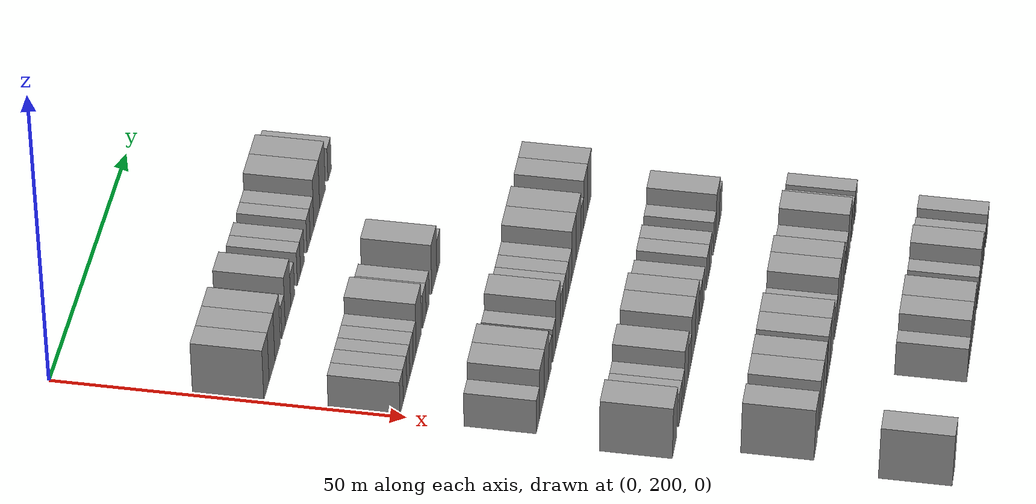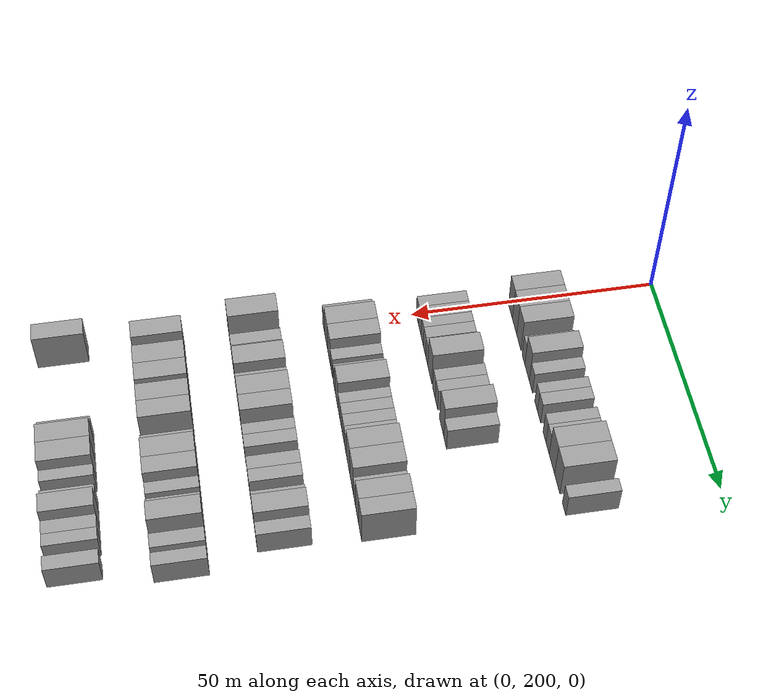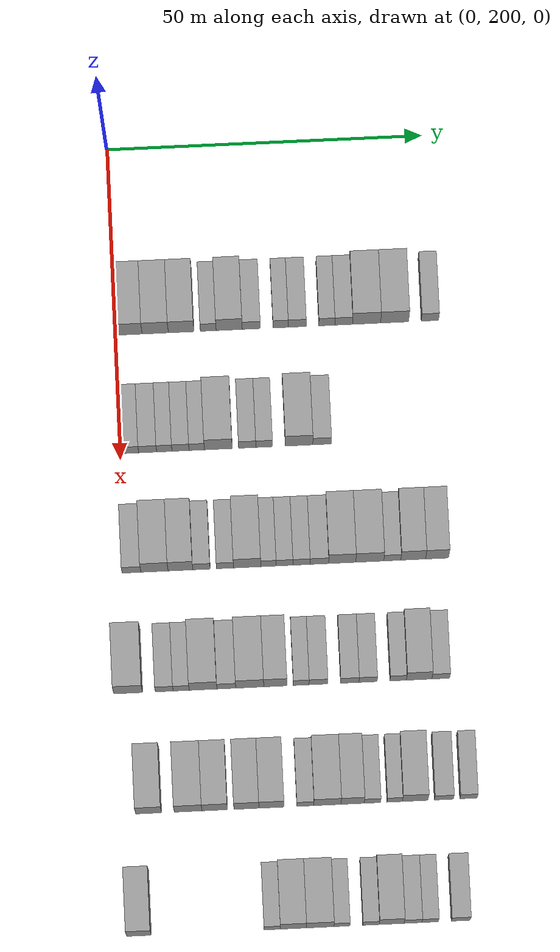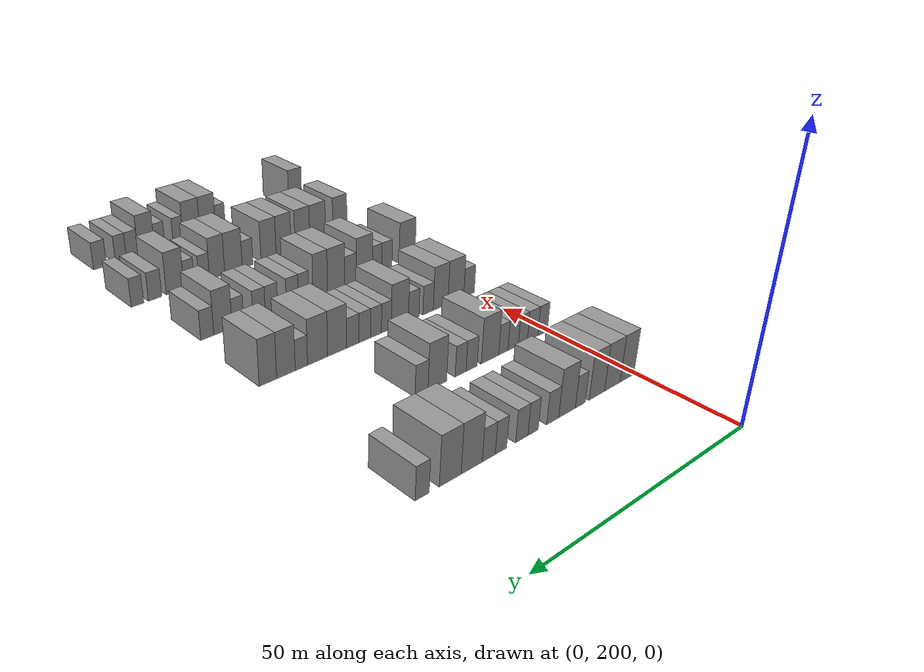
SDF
<sdf version="1.6">
 <world name="default">
  <model name="building_142">
   <static>1</static>
   <pose>25.0000 202.3733 0 0.000000 0.000000 0.000000</pose>
   <link name="link">
    <pose>0 0 4.50 0 0 0</pose>
    <collision name="collision"><geometry><box><size>10.0000 3.8001 9.0000</size></box></geometry></collision>
    <visual name="visual">
     <cast_shadows>0</cast_shadows>
     <geometry><box><size>10.0000 3.8001 9.0000</size></box></geometry>
     <material>
      <script>
       <uri>model://grey_wall/materials/scripts</uri>
       <uri>model://grey_wall/materials/textures</uri>
       <name>vrc/grey_wall</name>
      </script>
     </material>
    </visual>
   </link>
  </model>
  <model name="building_143">
   <static>1</static>
   <pose>25.0000 206.3467 0 0.000000 0.000000 0.000000</pose>
   <link name="link">
    <pose>0 0 4.50 0 0 0</pose>
    <collision name="collision"><geometry><box><size>10.0000 4.1468 9.0000</size></box></geometry></collision>
    <visual name="visual">
     <cast_shadows>0</cast_shadows>
     <geometry><box><size>10.0000 4.1468 9.0000</size></box></geometry>
     <material>
      <script>
       <uri>model://grey_wall/materials/scripts</uri>
       <uri>model://grey_wall/materials/textures</uri>
       <name>vrc/grey_wall</name>
      </script>
     </material>
    </visual>
   </link>
  </model>
  <model name="building_144">
   <static>1</static>
   <pose>25.0000 210.4505 0 0.000000 0.000000 0.000000</pose>
   <link name="link">
    <pose>0 0 4.50 0 0 0</pose>
    <collision name="collision"><geometry><box><size>10.0000 4.0608 9.0000</size></box></geometry></collision>
    <visual name="visual">
     <cast_shadows>0</cast_shadows>
     <geometry><box><size>10.0000 4.0608 9.0000</size></box></geometry>
     <material>
      <script>
       <uri>model://grey_wall/materials/scripts</uri>
       <uri>model://grey_wall/materials/textures</uri>
       <name>vrc/grey_wall</name>
      </script>
     </material>
    </visual>
   </link>
  </model>
  <model name="building_145">
   <static>1</static>
   <pose>25.0000 214.7290 0 0.000000 0.000000 0.000000</pose>
   <link name="link">
    <pose>0 0 3.00 0 0 0</pose>
    <collision name="collision"><geometry><box><size>10.0000 2.4961 6.0000</size></box></geometry></collision>
    <visual name="visual">
     <cast_shadows>0</cast_shadows>
     <geometry><box><size>10.0000 2.4961 6.0000</size></box></geometry>
     <material>
      <script>
       <uri>model://grey_wall/materials/scripts</uri>
       <uri>model://grey_wall/materials/textures</uri>
       <name>vrc/grey_wall</name>
      </script>
     </material>
    </visual>
   </link>
  </model>
  <model name="building_146">
   <static>1</static>
   <pose>25.0000 218.0418 0 0.000000 0.000000 0.000000</pose>
   <link name="link">
    <pose>0 0 4.50 0 0 0</pose>
    <collision name="collision"><geometry><box><size>10.0000 4.1295 9.0000</size></box></geometry></collision>
    <visual name="visual">
     <cast_shadows>0</cast_shadows>
     <geometry><box><size>10.0000 4.1295 9.0000</size></box></geometry>
     <material>
      <script>
       <uri>model://grey_wall/materials/scripts</uri>
       <uri>model://grey_wall/materials/textures</uri>
       <name>vrc/grey_wall</name>
      </script>
     </material>
    </visual>
   </link>
  </model>
  <model name="building_147">
   <static>1</static>
   <pose>25.0000 221.5386 0 0.000000 0.000000 0.000000</pose>
   <link name="link">
    <pose>0 0 3.00 0 0 0</pose>
    <collision name="collision"><geometry><box><size>10.0000 2.8642 6.0000</size></box></geometry></collision>
    <visual name="visual">
     <cast_shadows>0</cast_shadows>
     <geometry><box><size>10.0000 2.8642 6.0000</size></box></geometry>
     <material>
      <script>
       <uri>model://grey_wall/materials/scripts</uri>
       <uri>model://grey_wall/materials/textures</uri>
       <name>vrc/grey_wall</name>
      </script>
     </material>
    </visual>
   </link>
  </model>
  <model name="building_148">
   <static>1</static>
   <pose>25.0000 226.1761 0 0.000000 0.000000 0.000000</pose>
   <link name="link">
    <pose>0 0 3.00 0 0 0</pose>
    <collision name="collision"><geometry><box><size>10.0000 2.4108 6.0000</size></box></geometry></collision>
    <visual name="visual">
     <cast_shadows>0</cast_shadows>
     <geometry><box><size>10.0000 2.4108 6.0000</size></box></geometry>
     <material>
      <script>
       <uri>model://grey_wall/materials/scripts</uri>
       <uri>model://grey_wall/materials/textures</uri>
       <name>vrc/grey_wall</name>
      </script>
     </material>
    </visual>
   </link>
  </model>
  <model name="building_149">
   <static>1</static>
   <pose>25.0000 228.7997 0 0.000000 0.000000 0.000000</pose>
   <link name="link">
    <pose>0 0 3.00 0 0 0</pose>
    <collision name="collision"><geometry><box><size>10.0000 2.8364 6.0000</size></box></geometry></collision>
    <visual name="visual">
     <cast_shadows>0</cast_shadows>
     <geometry><box><size>10.0000 2.8364 6.0000</size></box></geometry>
     <material>
      <script>
       <uri>model://grey_wall/materials/scripts</uri>
       <uri>model://grey_wall/materials/textures</uri>
       <name>vrc/grey_wall</name>
      </script>
     </material>
    </visual>
   </link>
  </model>
  <model name="building_150">
   <static>1</static>
   <pose>25.0000 233.4773 0 0.000000 0.000000 0.000000</pose>
   <link name="link">
    <pose>0 0 3.00 0 0 0</pose>
    <collision name="collision"><geometry><box><size>10.0000 2.5187 6.0000</size></box></geometry></collision>
    <visual name="visual">
     <cast_shadows>0</cast_shadows>
     <geometry><box><size>10.0000 2.5187 6.0000</size></box></geometry>
     <material>
      <script>
       <uri>model://grey_wall/materials/scripts</uri>
       <uri>model://grey_wall/materials/textures</uri>
       <name>vrc/grey_wall</name>
      </script>
     </material>
    </visual>
   </link>
  </model>
  <model name="building_151">
   <static>1</static>
   <pose>25.0000 236.1362 0 0.000000 0.000000 0.000000</pose>
   <link name="link">
    <pose>0 0 3.00 0 0 0</pose>
    <collision name="collision"><geometry><box><size>10.0000 2.7992 6.0000</size></box></geometry></collision>
    <visual name="visual">
     <cast_shadows>0</cast_shadows>
     <geometry><box><size>10.0000 2.7992 6.0000</size></box></geometry>
     <material>
      <script>
       <uri>model://grey_wall/materials/scripts</uri>
       <uri>model://grey_wall/materials/textures</uri>
       <name>vrc/grey_wall</name>
      </script>
     </material>
    </visual>
   </link>
  </model>
  <model name="building_152">
   <static>1</static>
   <pose>25.0000 239.7703 0 0.000000 0.000000 0.000000</pose>
   <link name="link">
    <pose>0 0 4.50 0 0 0</pose>
    <collision name="collision"><geometry><box><size>10.0000 4.4690 9.0000</size></box></geometry></collision>
    <visual name="visual">
     <cast_shadows>0</cast_shadows>
     <geometry><box><size>10.0000 4.4690 9.0000</size></box></geometry>
     <material>
      <script>
       <uri>model://grey_wall/materials/scripts</uri>
       <uri>model://grey_wall/materials/textures</uri>
       <name>vrc/grey_wall</name>
      </script>
     </material>
    </visual>
   </link>
  </model>
  <model name="building_153">
   <static>1</static>
   <pose>25.0000 244.2162 0 0.000000 0.000000 0.000000</pose>
   <link name="link">
    <pose>0 0 4.50 0 0 0</pose>
    <collision name="collision"><geometry><box><size>10.0000 4.4228 9.0000</size></box></geometry></collision>
    <visual name="visual">
     <cast_shadows>0</cast_shadows>
     <geometry><box><size>10.0000 4.4228 9.0000</size></box></geometry>
     <material>
      <script>
       <uri>model://grey_wall/materials/scripts</uri>
       <uri>model://grey_wall/materials/textures</uri>
       <name>vrc/grey_wall</name>
      </script>
     </material>
    </visual>
   </link>
  </model>
  <model name="building_154">
   <static>1</static>
   <pose>25.0000 249.7953 0 0.000000 0.000000 0.000000</pose>
   <link name="link">
    <pose>0 0 3.00 0 0 0</pose>
    <collision name="collision"><geometry><box><size>10.0000 2.7353 6.0000</size></box></geometry></collision>
    <visual name="visual">
     <cast_shadows>0</cast_shadows>
     <geometry><box><size>10.0000 2.7353 6.0000</size></box></geometry>
     <material>
      <script>
       <uri>model://grey_wall/materials/scripts</uri>
       <uri>model://grey_wall/materials/textures</uri>
       <name>vrc/grey_wall</name>
      </script>
     </material>
    </visual>
   </link>
  </model>
  <model name="building_318">
   <static>1</static>
   <pose>44.0000 201.6154 0 0.000000 0.000000 0.000000</pose>
   <link name="link">
    <pose>0 0 3.00 0 0 0</pose>
    <collision name="collision"><geometry><box><size>10.0000 2.6357 6.0000</size></box></geometry></collision>
    <visual name="visual">
     <cast_shadows>0</cast_shadows>
     <geometry><box><size>10.0000 2.6357 6.0000</size></box></geometry>
     <material>
      <script>
       <uri>model://grey_wall/materials/scripts</uri>
       <uri>model://grey_wall/materials/textures</uri>
       <name>vrc/grey_wall</name>
      </script>
     </material>
    </visual>
   </link>
  </model>
  <model name="building_319">
   <static>1</static>
   <pose>44.0000 204.3480 0 0.000000 0.000000 0.000000</pose>
   <link name="link">
    <pose>0 0 3.00 0 0 0</pose>
    <collision name="collision"><geometry><box><size>10.0000 2.8294 6.0000</size></box></geometry></collision>
    <visual name="visual">
     <cast_shadows>0</cast_shadows>
     <geometry><box><size>10.0000 2.8294 6.0000</size></box></geometry>
     <material>
      <script>
       <uri>model://grey_wall/materials/scripts</uri>
       <uri>model://grey_wall/materials/textures</uri>
       <name>vrc/grey_wall</name>
      </script>
     </material>
    </visual>
   </link>
  </model>
  <model name="building_320">
   <static>1</static>
   <pose>44.0000 206.9735 0 0.000000 0.000000 0.000000</pose>
   <link name="link">
    <pose>0 0 3.00 0 0 0</pose>
    <collision name="collision"><geometry><box><size>10.0000 2.4216 6.0000</size></box></geometry></collision>
    <visual name="visual">
     <cast_shadows>0</cast_shadows>
     <geometry><box><size>10.0000 2.4216 6.0000</size></box></geometry>
     <material>
      <script>
       <uri>model://grey_wall/materials/scripts</uri>
       <uri>model://grey_wall/materials/textures</uri>
       <name>vrc/grey_wall</name>
      </script>
     </material>
    </visual>
   </link>
  </model>
  <model name="building_321">
   <static>1</static>
   <pose>44.0000 209.5310 0 0.000000 0.000000 0.000000</pose>
   <link name="link">
    <pose>0 0 3.00 0 0 0</pose>
    <collision name="collision"><geometry><box><size>10.0000 2.6935 6.0000</size></box></geometry></collision>
    <visual name="visual">
     <cast_shadows>0</cast_shadows>
     <geometry><box><size>10.0000 2.6935 6.0000</size></box></geometry>
     <material>
      <script>
       <uri>model://grey_wall/materials/scripts</uri>
       <uri>model://grey_wall/materials/textures</uri>
       <name>vrc/grey_wall</name>
      </script>
     </material>
    </visual>
   </link>
  </model>
  <model name="building_322">
   <static>1</static>
   <pose>44.0000 212.0808 0 0.000000 0.000000 0.000000</pose>
   <link name="link">
    <pose>0 0 3.00 0 0 0</pose>
    <collision name="collision"><geometry><box><size>10.0000 2.4060 6.0000</size></box></geometry></collision>
    <visual name="visual">
     <cast_shadows>0</cast_shadows>
     <geometry><box><size>10.0000 2.4060 6.0000</size></box></geometry>
     <material>
      <script>
       <uri>model://grey_wall/materials/scripts</uri>
       <uri>model://grey_wall/materials/textures</uri>
       <name>vrc/grey_wall</name>
      </script>
     </material>
    </visual>
   </link>
  </model>
  <model name="building_323">
   <static>1</static>
   <pose>44.0000 215.4780 0 0.000000 0.000000 0.000000</pose>
   <link name="link">
    <pose>0 0 4.50 0 0 0</pose>
    <collision name="collision"><geometry><box><size>10.0000 4.3884 9.0000</size></box></geometry></collision>
    <visual name="visual">
     <cast_shadows>0</cast_shadows>
     <geometry><box><size>10.0000 4.3884 9.0000</size></box></geometry>
     <material>
      <script>
       <uri>model://grey_wall/materials/scripts</uri>
       <uri>model://grey_wall/materials/textures</uri>
       <name>vrc/grey_wall</name>
      </script>
     </material>
    </visual>
   </link>
  </model>
  <model name="building_324">
   <static>1</static>
   <pose>44.0000 220.0338 0 0.000000 0.000000 0.000000</pose>
   <link name="link">
    <pose>0 0 3.00 0 0 0</pose>
    <collision name="collision"><geometry><box><size>10.0000 2.7232 6.0000</size></box></geometry></collision>
    <visual name="visual">
     <cast_shadows>0</cast_shadows>
     <geometry><box><size>10.0000 2.7232 6.0000</size></box></geometry>
     <material>
      <script>
       <uri>model://grey_wall/materials/scripts</uri>
       <uri>model://grey_wall/materials/textures</uri>
       <name>vrc/grey_wall</name>
      </script>
     </material>
    </visual>
   </link>
  </model>
  <model name="building_325">
   <static>1</static>
   <pose>44.0000 222.7101 0 0.000000 0.000000 0.000000</pose>
   <link name="link">
    <pose>0 0 3.00 0 0 0</pose>
    <collision name="collision"><geometry><box><size>10.0000 2.6293 6.0000</size></box></geometry></collision>
    <visual name="visual">
     <cast_shadows>0</cast_shadows>
     <geometry><box><size>10.0000 2.6293 6.0000</size></box></geometry>
     <material>
      <script>
       <uri>model://grey_wall/materials/scripts</uri>
       <uri>model://grey_wall/materials/textures</uri>
       <name>vrc/grey_wall</name>
      </script>
     </material>
    </visual>
   </link>
  </model>
  <model name="building_326">
   <static>1</static>
   <pose>44.0000 228.1924 0 0.000000 0.000000 0.000000</pose>
   <link name="link">
    <pose>0 0 4.50 0 0 0</pose>
    <collision name="collision"><geometry><box><size>10.0000 4.3352 9.0000</size></box></geometry></collision>
    <visual name="visual">
     <cast_shadows>0</cast_shadows>
     <geometry><box><size>10.0000 4.3352 9.0000</size></box></geometry>
     <material>
      <script>
       <uri>model://grey_wall/materials/scripts</uri>
       <uri>model://grey_wall/materials/textures</uri>
       <name>vrc/grey_wall</name>
      </script>
     </material>
    </visual>
   </link>
  </model>
  <model name="building_327">
   <static>1</static>
   <pose>44.0000 231.8220 0 0.000000 0.000000 0.000000</pose>
   <link name="link">
    <pose>0 0 3.00 0 0 0</pose>
    <collision name="collision"><geometry><box><size>10.0000 2.9240 6.0000</size></box></geometry></collision>
    <visual name="visual">
     <cast_shadows>0</cast_shadows>
     <geometry><box><size>10.0000 2.9240 6.0000</size></box></geometry>
     <material>
      <script>
       <uri>model://grey_wall/materials/scripts</uri>
       <uri>model://grey_wall/materials/textures</uri>
       <name>vrc/grey_wall</name>
      </script>
     </material>
    </visual>
   </link>
  </model>
  <model name="building_488">
   <static>1</static>
   <pose>63.0000 200.9984 0 0.000000 0.000000 0.000000</pose>
   <link name="link">
    <pose>0 0 3.00 0 0 0</pose>
    <collision name="collision"><geometry><box><size>10.0000 2.9415 6.0000</size></box></geometry></collision>
    <visual name="visual">
     <cast_shadows>0</cast_shadows>
     <geometry><box><size>10.0000 2.9415 6.0000</size></box></geometry>
     <material>
      <script>
       <uri>model://grey_wall/materials/scripts</uri>
       <uri>model://grey_wall/materials/textures</uri>
       <name>vrc/grey_wall</name>
      </script>
     </material>
    </visual>
   </link>
  </model>
  <model name="building_489">
   <static>1</static>
   <pose>63.0000 204.6077 0 0.000000 0.000000 0.000000</pose>
   <link name="link">
    <pose>0 0 4.50 0 0 0</pose>
    <collision name="collision"><geometry><box><size>10.0000 4.2771 9.0000</size></box></geometry></collision>
    <visual name="visual">
     <cast_shadows>0</cast_shadows>
     <geometry><box><size>10.0000 4.2771 9.0000</size></box></geometry>
     <material>
      <script>
       <uri>model://grey_wall/materials/scripts</uri>
       <uri>model://grey_wall/materials/textures</uri>
       <name>vrc/grey_wall</name>
      </script>
     </material>
    </visual>
   </link>
  </model>
  <model name="building_490">
   <static>1</static>
   <pose>63.0000 208.6927 0 0.000000 0.000000 0.000000</pose>
   <link name="link">
    <pose>0 0 4.50 0 0 0</pose>
    <collision name="collision"><geometry><box><size>10.0000 3.8929 9.0000</size></box></geometry></collision>
    <visual name="visual">
     <cast_shadows>0</cast_shadows>
     <geometry><box><size>10.0000 3.8929 9.0000</size></box></geometry>
     <material>
      <script>
       <uri>model://grey_wall/materials/scripts</uri>
       <uri>model://grey_wall/materials/textures</uri>
       <name>vrc/grey_wall</name>
      </script>
     </material>
    </visual>
   </link>
  </model>
  <model name="building_491">
   <static>1</static>
   <pose>63.0000 211.9918 0 0.000000 0.000000 0.000000</pose>
   <link name="link">
    <pose>0 0 3.00 0 0 0</pose>
    <collision name="collision"><geometry><box><size>10.0000 2.7054 6.0000</size></box></geometry></collision>
    <visual name="visual">
     <cast_shadows>0</cast_shadows>
     <geometry><box><size>10.0000 2.7054 6.0000</size></box></geometry>
     <material>
      <script>
       <uri>model://grey_wall/materials/scripts</uri>
       <uri>model://grey_wall/materials/textures</uri>
       <name>vrc/grey_wall</name>
      </script>
     </material>
    </visual>
   </link>
  </model>
  <model name="building_492">
   <static>1</static>
   <pose>63.0000 215.6820 0 0.000000 0.000000 0.000000</pose>
   <link name="link">
    <pose>0 0 3.00 0 0 0</pose>
    <collision name="collision"><geometry><box><size>10.0000 2.6751 6.0000</size></box></geometry></collision>
    <visual name="visual">
     <cast_shadows>0</cast_shadows>
     <geometry><box><size>10.0000 2.6751 6.0000</size></box></geometry>
     <material>
      <script>
       <uri>model://grey_wall/materials/scripts</uri>
       <uri>model://grey_wall/materials/textures</uri>
       <name>vrc/grey_wall</name>
      </script>
     </material>
    </visual>
   </link>
  </model>
  <model name="building_493">
   <static>1</static>
   <pose>63.0000 219.1602 0 0.000000 0.000000 0.000000</pose>
   <link name="link">
    <pose>0 0 4.50 0 0 0</pose>
    <collision name="collision"><geometry><box><size>10.0000 4.2812 9.0000</size></box></geometry></collision>
    <visual name="visual">
     <cast_shadows>0</cast_shadows>
     <geometry><box><size>10.0000 4.2812 9.0000</size></box></geometry>
     <material>
      <script>
       <uri>model://grey_wall/materials/scripts</uri>
       <uri>model://grey_wall/materials/textures</uri>
       <name>vrc/grey_wall</name>
      </script>
     </material>
    </visual>
   </link>
  </model>
  <model name="building_494">
   <static>1</static>
   <pose>63.0000 222.5059 0 0.000000 0.000000 0.000000</pose>
   <link name="link">
    <pose>0 0 3.00 0 0 0</pose>
    <collision name="collision"><geometry><box><size>10.0000 2.4100 6.0000</size></box></geometry></collision>
    <visual name="visual">
     <cast_shadows>0</cast_shadows>
     <geometry><box><size>10.0000 2.4100 6.0000</size></box></geometry>
     <material>
      <script>
       <uri>model://grey_wall/materials/scripts</uri>
       <uri>model://grey_wall/materials/textures</uri>
       <name>vrc/grey_wall</name>
      </script>
     </material>
    </visual>
   </link>
  </model>
  <model name="building_495">
   <static>1</static>
   <pose>63.0000 225.0260 0 0.000000 0.000000 0.000000</pose>
   <link name="link">
    <pose>0 0 3.00 0 0 0</pose>
    <collision name="collision"><geometry><box><size>10.0000 2.6302 6.0000</size></box></geometry></collision>
    <visual name="visual">
     <cast_shadows>0</cast_shadows>
     <geometry><box><size>10.0000 2.6302 6.0000</size></box></geometry>
     <material>
      <script>
       <uri>model://grey_wall/materials/scripts</uri>
       <uri>model://grey_wall/materials/textures</uri>
       <name>vrc/grey_wall</name>
      </script>
     </material>
    </visual>
   </link>
  </model>
  <model name="building_496">
   <static>1</static>
   <pose>63.0000 227.6887 0 0.000000 0.000000 0.000000</pose>
   <link name="link">
    <pose>0 0 3.00 0 0 0</pose>
    <collision name="collision"><geometry><box><size>10.0000 2.6953 6.0000</size></box></geometry></collision>
    <visual name="visual">
     <cast_shadows>0</cast_shadows>
     <geometry><box><size>10.0000 2.6953 6.0000</size></box></geometry>
     <material>
      <script>
       <uri>model://grey_wall/materials/scripts</uri>
       <uri>model://grey_wall/materials/textures</uri>
       <name>vrc/grey_wall</name>
      </script>
     </material>
    </visual>
   </link>
  </model>
  <model name="building_497">
   <static>1</static>
   <pose>63.0000 230.4884 0 0.000000 0.000000 0.000000</pose>
   <link name="link">
    <pose>0 0 3.00 0 0 0</pose>
    <collision name="collision"><geometry><box><size>10.0000 2.9043 6.0000</size></box></geometry></collision>
    <visual name="visual">
     <cast_shadows>0</cast_shadows>
     <geometry><box><size>10.0000 2.9043 6.0000</size></box></geometry>
     <material>
      <script>
       <uri>model://grey_wall/materials/scripts</uri>
       <uri>model://grey_wall/materials/textures</uri>
       <name>vrc/grey_wall</name>
      </script>
     </material>
    </visual>
   </link>
  </model>
  <model name="building_498">
   <static>1</static>
   <pose>63.0000 234.0773 0 0.000000 0.000000 0.000000</pose>
   <link name="link">
    <pose>0 0 4.50 0 0 0</pose>
    <collision name="collision"><geometry><box><size>10.0000 4.2733 9.0000</size></box></geometry></collision>
    <visual name="visual">
     <cast_shadows>0</cast_shadows>
     <geometry><box><size>10.0000 4.2733 9.0000</size></box></geometry>
     <material>
      <script>
       <uri>model://grey_wall/materials/scripts</uri>
       <uri>model://grey_wall/materials/textures</uri>
       <name>vrc/grey_wall</name>
      </script>
     </material>
    </visual>
   </link>
  </model>
  <model name="building_499">
   <static>1</static>
   <pose>63.0000 238.4194 0 0.000000 0.000000 0.000000</pose>
   <link name="link">
    <pose>0 0 4.50 0 0 0</pose>
    <collision name="collision"><geometry><box><size>10.0000 4.4108 9.0000</size></box></geometry></collision>
    <visual name="visual">
     <cast_shadows>0</cast_shadows>
     <geometry><box><size>10.0000 4.4108 9.0000</size></box></geometry>
     <material>
      <script>
       <uri>model://grey_wall/materials/scripts</uri>
       <uri>model://grey_wall/materials/textures</uri>
       <name>vrc/grey_wall</name>
      </script>
     </material>
    </visual>
   </link>
  </model>
  <model name="building_500">
   <static>1</static>
   <pose>63.0000 241.9574 0 0.000000 0.000000 0.000000</pose>
   <link name="link">
    <pose>0 0 3.00 0 0 0</pose>
    <collision name="collision"><geometry><box><size>10.0000 2.6653 6.0000</size></box></geometry></collision>
    <visual name="visual">
     <cast_shadows>0</cast_shadows>
     <geometry><box><size>10.0000 2.6653 6.0000</size></box></geometry>
     <material>
      <script>
       <uri>model://grey_wall/materials/scripts</uri>
       <uri>model://grey_wall/materials/textures</uri>
       <name>vrc/grey_wall</name>
      </script>
     </material>
    </visual>
   </link>
  </model>
  <model name="building_501">
   <static>1</static>
   <pose>63.0000 245.2374 0 0.000000 0.000000 0.000000</pose>
   <link name="link">
    <pose>0 0 4.50 0 0 0</pose>
    <collision name="collision"><geometry><box><size>10.0000 3.8947 9.0000</size></box></geometry></collision>
    <visual name="visual">
     <cast_shadows>0</cast_shadows>
     <geometry><box><size>10.0000 3.8947 9.0000</size></box></geometry>
     <material>
      <script>
       <uri>model://grey_wall/materials/scripts</uri>
       <uri>model://grey_wall/materials/textures</uri>
       <name>vrc/grey_wall</name>
      </script>
     </material>
    </visual>
   </link>
  </model>
  <model name="building_502">
   <static>1</static>
   <pose>63.0000 248.9868 0 0.000000 0.000000 0.000000</pose>
   <link name="link">
    <pose>0 0 4.50 0 0 0</pose>
    <collision name="collision"><geometry><box><size>10.0000 3.6041 9.0000</size></box></geometry></collision>
    <visual name="visual">
     <cast_shadows>0</cast_shadows>
     <geometry><box><size>10.0000 3.6041 9.0000</size></box></geometry>
     <material>
      <script>
       <uri>model://grey_wall/materials/scripts</uri>
       <uri>model://grey_wall/materials/textures</uri>
       <name>vrc/grey_wall</name>
      </script>
     </material>
    </visual>
   </link>
  </model>
  <model name="building_663">
   <static>1</static>
   <pose>82.0000 199.6753 0 0.000000 0.000000 0.000000</pose>
   <link name="link">
    <pose>0 0 4.50 0 0 0</pose>
    <collision name="collision"><geometry><box><size>10.0000 4.4968 9.0000</size></box></geometry></collision>
    <visual name="visual">
     <cast_shadows>0</cast_shadows>
     <geometry><box><size>10.0000 4.4968 9.0000</size></box></geometry>
     <material>
      <script>
       <uri>model://grey_wall/materials/scripts</uri>
       <uri>model://grey_wall/materials/textures</uri>
       <name>vrc/grey_wall</name>
      </script>
     </material>
    </visual>
   </link>
  </model>
  <model name="building_664">
   <static>1</static>
   <pose>82.0000 205.3127 0 0.000000 0.000000 0.000000</pose>
   <link name="link">
    <pose>0 0 3.00 0 0 0</pose>
    <collision name="collision"><geometry><box><size>10.0000 2.7779 6.0000</size></box></geometry></collision>
    <visual name="visual">
     <cast_shadows>0</cast_shadows>
     <geometry><box><size>10.0000 2.7779 6.0000</size></box></geometry>
     <material>
      <script>
       <uri>model://grey_wall/materials/scripts</uri>
       <uri>model://grey_wall/materials/textures</uri>
       <name>vrc/grey_wall</name>
      </script>
     </material>
    </visual>
   </link>
  </model>
  <model name="building_665">
   <static>1</static>
   <pose>82.0000 207.9608 0 0.000000 0.000000 0.000000</pose>
   <link name="link">
    <pose>0 0 3.00 0 0 0</pose>
    <collision name="collision"><geometry><box><size>10.0000 2.5184 6.0000</size></box></geometry></collision>
    <visual name="visual">
     <cast_shadows>0</cast_shadows>
     <geometry><box><size>10.0000 2.5184 6.0000</size></box></geometry>
     <material>
      <script>
       <uri>model://grey_wall/materials/scripts</uri>
       <uri>model://grey_wall/materials/textures</uri>
       <name>vrc/grey_wall</name>
      </script>
     </material>
    </visual>
   </link>
  </model>
  <model name="building_666">
   <static>1</static>
   <pose>82.0000 211.3915 0 0.000000 0.000000 0.000000</pose>
   <link name="link">
    <pose>0 0 4.50 0 0 0</pose>
    <collision name="collision"><geometry><box><size>10.0000 4.3431 9.0000</size></box></geometry></collision>
    <visual name="visual">
     <cast_shadows>0</cast_shadows>
     <geometry><box><size>10.0000 4.3431 9.0000</size></box></geometry>
     <material>
      <script>
       <uri>model://grey_wall/materials/scripts</uri>
       <uri>model://grey_wall/materials/textures</uri>
       <name>vrc/grey_wall</name>
      </script>
     </material>
    </visual>
   </link>
  </model>
  <model name="building_667">
   <static>1</static>
   <pose>82.0000 215.0327 0 0.000000 0.000000 0.000000</pose>
   <link name="link">
    <pose>0 0 3.00 0 0 0</pose>
    <collision name="collision"><geometry><box><size>10.0000 2.9393 6.0000</size></box></geometry></collision>
    <visual name="visual">
     <cast_shadows>0</cast_shadows>
     <geometry><box><size>10.0000 2.9393 6.0000</size></box></geometry>
     <material>
      <script>
       <uri>model://grey_wall/materials/scripts</uri>
       <uri>model://grey_wall/materials/textures</uri>
       <name>vrc/grey_wall</name>
      </script>
     </material>
    </visual>
   </link>
  </model>
  <model name="building_668">
   <static>1</static>
   <pose>82.0000 218.6918 0 0.000000 0.000000 0.000000</pose>
   <link name="link">
    <pose>0 0 4.50 0 0 0</pose>
    <collision name="collision"><geometry><box><size>10.0000 4.3788 9.0000</size></box></geometry></collision>
    <visual name="visual">
     <cast_shadows>0</cast_shadows>
     <geometry><box><size>10.0000 4.3788 9.0000</size></box></geometry>
     <material>
      <script>
       <uri>model://grey_wall/materials/scripts</uri>
       <uri>model://grey_wall/materials/textures</uri>
       <name>vrc/grey_wall</name>
      </script>
     </material>
    </visual>
   </link>
  </model>
  <model name="building_669">
   <static>1</static>
   <pose>82.0000 222.6955 0 0.000000 0.000000 0.000000</pose>
   <link name="link">
    <pose>0 0 4.50 0 0 0</pose>
    <collision name="collision"><geometry><box><size>10.0000 3.6286 9.0000</size></box></geometry></collision>
    <visual name="visual">
     <cast_shadows>0</cast_shadows>
     <geometry><box><size>10.0000 3.6286 9.0000</size></box></geometry>
     <material>
      <script>
       <uri>model://grey_wall/materials/scripts</uri>
       <uri>model://grey_wall/materials/textures</uri>
       <name>vrc/grey_wall</name>
      </script>
     </material>
    </visual>
   </link>
  </model>
  <model name="building_670">
   <static>1</static>
   <pose>82.0000 226.7478 0 0.000000 0.000000 0.000000</pose>
   <link name="link">
    <pose>0 0 3.00 0 0 0</pose>
    <collision name="collision"><geometry><box><size>10.0000 2.4759 6.0000</size></box></geometry></collision>
    <visual name="visual">
     <cast_shadows>0</cast_shadows>
     <geometry><box><size>10.0000 2.4759 6.0000</size></box></geometry>
     <material>
      <script>
       <uri>model://grey_wall/materials/scripts</uri>
       <uri>model://grey_wall/materials/textures</uri>
       <name>vrc/grey_wall</name>
      </script>
     </material>
    </visual>
   </link>
  </model>
  <model name="building_671">
   <static>1</static>
   <pose>82.0000 229.4458 0 0.000000 0.000000 0.000000</pose>
   <link name="link">
    <pose>0 0 3.00 0 0 0</pose>
    <collision name="collision"><geometry><box><size>10.0000 2.9202 6.0000</size></box></geometry></collision>
    <visual name="visual">
     <cast_shadows>0</cast_shadows>
     <geometry><box><size>10.0000 2.9202 6.0000</size></box></geometry>
     <material>
      <script>
       <uri>model://grey_wall/materials/scripts</uri>
       <uri>model://grey_wall/materials/textures</uri>
       <name>vrc/grey_wall</name>
      </script>
     </material>
    </visual>
   </link>
  </model>
  <model name="building_672">
   <static>1</static>
   <pose>82.0000 234.3489 0 0.000000 0.000000 0.000000</pose>
   <link name="link">
    <pose>0 0 3.00 0 0 0</pose>
    <collision name="collision"><geometry><box><size>10.0000 2.8859 6.0000</size></box></geometry></collision>
    <visual name="visual">
     <cast_shadows>0</cast_shadows>
     <geometry><box><size>10.0000 2.8859 6.0000</size></box></geometry>
     <material>
      <script>
       <uri>model://grey_wall/materials/scripts</uri>
       <uri>model://grey_wall/materials/textures</uri>
       <name>vrc/grey_wall</name>
      </script>
     </material>
    </visual>
   </link>
  </model>
  <model name="building_673">
   <static>1</static>
   <pose>82.0000 237.2113 0 0.000000 0.000000 0.000000</pose>
   <link name="link">
    <pose>0 0 3.00 0 0 0</pose>
    <collision name="collision"><geometry><box><size>10.0000 2.8389 6.0000</size></box></geometry></collision>
    <visual name="visual">
     <cast_shadows>0</cast_shadows>
     <geometry><box><size>10.0000 2.8389 6.0000</size></box></geometry>
     <material>
      <script>
       <uri>model://grey_wall/materials/scripts</uri>
       <uri>model://grey_wall/materials/textures</uri>
       <name>vrc/grey_wall</name>
      </script>
     </material>
    </visual>
   </link>
  </model>
  <model name="building_674">
   <static>1</static>
   <pose>82.0000 241.9272 0 0.000000 0.000000 0.000000</pose>
   <link name="link">
    <pose>0 0 3.00 0 0 0</pose>
    <collision name="collision"><geometry><box><size>10.0000 2.5930 6.0000</size></box></geometry></collision>
    <visual name="visual">
     <cast_shadows>0</cast_shadows>
     <geometry><box><size>10.0000 2.5930 6.0000</size></box></geometry>
     <material>
      <script>
       <uri>model://grey_wall/materials/scripts</uri>
       <uri>model://grey_wall/materials/textures</uri>
       <name>vrc/grey_wall</name>
      </script>
     </material>
    </visual>
   </link>
  </model>
  <model name="building_675">
   <static>1</static>
   <pose>82.0000 245.2169 0 0.000000 0.000000 0.000000</pose>
   <link name="link">
    <pose>0 0 4.50 0 0 0</pose>
    <collision name="collision"><geometry><box><size>10.0000 3.9865 9.0000</size></box></geometry></collision>
    <visual name="visual">
     <cast_shadows>0</cast_shadows>
     <geometry><box><size>10.0000 3.9865 9.0000</size></box></geometry>
     <material>
      <script>
       <uri>model://grey_wall/materials/scripts</uri>
       <uri>model://grey_wall/materials/textures</uri>
       <name>vrc/grey_wall</name>
      </script>
     </material>
    </visual>
   </link>
  </model>
  <model name="building_676">
   <static>1</static>
   <pose>82.0000 248.6009 0 0.000000 0.000000 0.000000</pose>
   <link name="link">
    <pose>0 0 3.00 0 0 0</pose>
    <collision name="collision"><geometry><box><size>10.0000 2.7814 6.0000</size></box></geometry></collision>
    <visual name="visual">
     <cast_shadows>0</cast_shadows>
     <geometry><box><size>10.0000 2.7814 6.0000</size></box></geometry>
     <material>
      <script>
       <uri>model://grey_wall/materials/scripts</uri>
       <uri>model://grey_wall/materials/textures</uri>
       <name>vrc/grey_wall</name>
      </script>
     </material>
    </visual>
   </link>
  </model>
  <model name="building_840">
   <static>1</static>
   <pose>101.0000 202.0664 0 0.000000 0.000000 0.000000</pose>
   <link name="link">
    <pose>0 0 4.50 0 0 0</pose>
    <collision name="collision"><geometry><box><size>10.0000 4.0134 9.0000</size></box></geometry></collision>
    <visual name="visual">
     <cast_shadows>0</cast_shadows>
     <geometry><box><size>10.0000 4.0134 9.0000</size></box></geometry>
     <material>
      <script>
       <uri>model://grey_wall/materials/scripts</uri>
       <uri>model://grey_wall/materials/textures</uri>
       <name>vrc/grey_wall</name>
      </script>
     </material>
    </visual>
   </link>
  </model>
  <model name="building_841">
   <static>1</static>
   <pose>101.0000 208.2307 0 0.000000 0.000000 0.000000</pose>
   <link name="link">
    <pose>0 0 4.50 0 0 0</pose>
    <collision name="collision"><geometry><box><size>10.0000 4.3152 9.0000</size></box></geometry></collision>
    <visual name="visual">
     <cast_shadows>0</cast_shadows>
     <geometry><box><size>10.0000 4.3152 9.0000</size></box></geometry>
     <material>
      <script>
       <uri>model://grey_wall/materials/scripts</uri>
       <uri>model://grey_wall/materials/textures</uri>
       <name>vrc/grey_wall</name>
      </script>
     </material>
    </visual>
   </link>
  </model>
  <model name="building_842">
   <static>1</static>
   <pose>101.0000 212.3771 0 0.000000 0.000000 0.000000</pose>
   <link name="link">
    <pose>0 0 4.50 0 0 0</pose>
    <collision name="collision"><geometry><box><size>10.0000 3.9775 9.0000</size></box></geometry></collision>
    <visual name="visual">
     <cast_shadows>0</cast_shadows>
     <geometry><box><size>10.0000 3.9775 9.0000</size></box></geometry>
     <material>
      <script>
       <uri>model://grey_wall/materials/scripts</uri>
       <uri>model://grey_wall/materials/textures</uri>
       <name>vrc/grey_wall</name>
      </script>
     </material>
    </visual>
   </link>
  </model>
  <model name="building_843">
   <static>1</static>
   <pose>101.0000 217.3185 0 0.000000 0.000000 0.000000</pose>
   <link name="link">
    <pose>0 0 4.50 0 0 0</pose>
    <collision name="collision"><geometry><box><size>10.0000 3.9053 9.0000</size></box></geometry></collision>
    <visual name="visual">
     <cast_shadows>0</cast_shadows>
     <geometry><box><size>10.0000 3.9053 9.0000</size></box></geometry>
     <material>
      <script>
       <uri>model://grey_wall/materials/scripts</uri>
       <uri>model://grey_wall/materials/textures</uri>
       <name>vrc/grey_wall</name>
      </script>
     </material>
    </visual>
   </link>
  </model>
  <model name="building_844">
   <static>1</static>
   <pose>101.0000 221.2189 0 0.000000 0.000000 0.000000</pose>
   <link name="link">
    <pose>0 0 4.50 0 0 0</pose>
    <collision name="collision"><geometry><box><size>10.0000 3.8954 9.0000</size></box></geometry></collision>
    <visual name="visual">
     <cast_shadows>0</cast_shadows>
     <geometry><box><size>10.0000 3.8954 9.0000</size></box></geometry>
     <material>
      <script>
       <uri>model://grey_wall/materials/scripts</uri>
       <uri>model://grey_wall/materials/textures</uri>
       <name>vrc/grey_wall</name>
      </script>
     </material>
    </visual>
   </link>
  </model>
  <model name="building_845">
   <static>1</static>
   <pose>101.0000 226.5001 0 0.000000 0.000000 0.000000</pose>
   <link name="link">
    <pose>0 0 3.00 0 0 0</pose>
    <collision name="collision"><geometry><box><size>10.0000 2.6672 6.0000</size></box></geometry></collision>
    <visual name="visual">
     <cast_shadows>0</cast_shadows>
     <geometry><box><size>10.0000 2.6672 6.0000</size></box></geometry>
     <material>
      <script>
       <uri>model://grey_wall/materials/scripts</uri>
       <uri>model://grey_wall/materials/textures</uri>
       <name>vrc/grey_wall</name>
      </script>
     </material>
    </visual>
   </link>
  </model>
  <model name="building_846">
   <static>1</static>
   <pose>101.0000 229.9576 0 0.000000 0.000000 0.000000</pose>
   <link name="link">
    <pose>0 0 4.50 0 0 0</pose>
    <collision name="collision"><geometry><box><size>10.0000 4.2476 9.0000</size></box></geometry></collision>
    <visual name="visual">
     <cast_shadows>0</cast_shadows>
     <geometry><box><size>10.0000 4.2476 9.0000</size></box></geometry>
     <material>
      <script>
       <uri>model://grey_wall/materials/scripts</uri>
       <uri>model://grey_wall/materials/textures</uri>
       <name>vrc/grey_wall</name>
      </script>
     </material>
    </visual>
   </link>
  </model>
  <model name="building_847">
   <static>1</static>
   <pose>101.0000 233.8884 0 0.000000 0.000000 0.000000</pose>
   <link name="link">
    <pose>0 0 4.50 0 0 0</pose>
    <collision name="collision"><geometry><box><size>10.0000 3.6141 9.0000</size></box></geometry></collision>
    <visual name="visual">
     <cast_shadows>0</cast_shadows>
     <geometry><box><size>10.0000 3.6141 9.0000</size></box></geometry>
     <material>
      <script>
       <uri>model://grey_wall/materials/scripts</uri>
       <uri>model://grey_wall/materials/textures</uri>
       <name>vrc/grey_wall</name>
      </script>
     </material>
    </visual>
   </link>
  </model>
  <model name="building_848">
   <static>1</static>
   <pose>101.0000 236.9658 0 0.000000 0.000000 0.000000</pose>
   <link name="link">
    <pose>0 0 3.00 0 0 0</pose>
    <collision name="collision"><geometry><box><size>10.0000 2.5407 6.0000</size></box></geometry></collision>
    <visual name="visual">
     <cast_shadows>0</cast_shadows>
     <geometry><box><size>10.0000 2.5407 6.0000</size></box></geometry>
     <material>
      <script>
       <uri>model://grey_wall/materials/scripts</uri>
       <uri>model://grey_wall/materials/textures</uri>
       <name>vrc/grey_wall</name>
      </script>
     </material>
    </visual>
   </link>
  </model>
  <model name="building_849">
   <static>1</static>
   <pose>101.0000 240.4393 0 0.000000 0.000000 0.000000</pose>
   <link name="link">
    <pose>0 0 3.00 0 0 0</pose>
    <collision name="collision"><geometry><box><size>10.0000 2.4063 6.0000</size></box></geometry></collision>
    <visual name="visual">
     <cast_shadows>0</cast_shadows>
     <geometry><box><size>10.0000 2.4063 6.0000</size></box></geometry>
     <material>
      <script>
       <uri>model://grey_wall/materials/scripts</uri>
       <uri>model://grey_wall/materials/textures</uri>
       <name>vrc/grey_wall</name>
      </script>
     </material>
    </visual>
   </link>
  </model>
  <model name="building_850">
   <static>1</static>
   <pose>101.0000 243.6386 0 0.000000 0.000000 0.000000</pose>
   <link name="link">
    <pose>0 0 4.50 0 0 0</pose>
    <collision name="collision"><geometry><box><size>10.0000 3.9924 9.0000</size></box></geometry></collision>
    <visual name="visual">
     <cast_shadows>0</cast_shadows>
     <geometry><box><size>10.0000 3.9924 9.0000</size></box></geometry>
     <material>
      <script>
       <uri>model://grey_wall/materials/scripts</uri>
       <uri>model://grey_wall/materials/textures</uri>
       <name>vrc/grey_wall</name>
      </script>
     </material>
    </visual>
   </link>
  </model>
  <model name="building_851">
   <static>1</static>
   <pose>101.0000 248.1157 0 0.000000 0.000000 0.000000</pose>
   <link name="link">
    <pose>0 0 3.00 0 0 0</pose>
    <collision name="collision"><geometry><box><size>10.0000 2.9619 6.0000</size></box></geometry></collision>
    <visual name="visual">
     <cast_shadows>0</cast_shadows>
     <geometry><box><size>10.0000 2.9619 6.0000</size></box></geometry>
     <material>
      <script>
       <uri>model://grey_wall/materials/scripts</uri>
       <uri>model://grey_wall/materials/textures</uri>
       <name>vrc/grey_wall</name>
      </script>
     </material>
    </visual>
   </link>
  </model>
  <model name="building_852">
   <static>1</static>
   <pose>101.0000 251.9497 0 0.000000 0.000000 0.000000</pose>
   <link name="link">
    <pose>0 0 3.00 0 0 0</pose>
    <collision name="collision"><geometry><box><size>10.0000 2.7061 6.0000</size></box></geometry></collision>
    <visual name="visual">
     <cast_shadows>0</cast_shadows>
     <geometry><box><size>10.0000 2.7061 6.0000</size></box></geometry>
     <material>
      <script>
       <uri>model://grey_wall/materials/scripts</uri>
       <uri>model://grey_wall/materials/textures</uri>
       <name>vrc/grey_wall</name>
      </script>
     </material>
    </visual>
   </link>
  </model>
  <model name="building_1014">
   <static>1</static>
   <pose>120.0000 199.7639 0 0.000000 0.000000 0.000000</pose>
   <link name="link">
    <pose>0 0 4.50 0 0 0</pose>
    <collision name="collision"><geometry><box><size>10.0000 3.8062 9.0000</size></box></geometry></collision>
    <visual name="visual">
     <cast_shadows>0</cast_shadows>
     <geometry><box><size>10.0000 3.8062 9.0000</size></box></geometry>
     <material>
      <script>
       <uri>model://grey_wall/materials/scripts</uri>
       <uri>model://grey_wall/materials/textures</uri>
       <name>vrc/grey_wall</name>
      </script>
     </material>
    </visual>
   </link>
  </model>
  <model name="building_1015">
   <static>1</static>
   <pose>120.0000 220.4580 0 0.000000 0.000000 0.000000</pose>
   <link name="link">
    <pose>0 0 3.00 0 0 0</pose>
    <collision name="collision"><geometry><box><size>10.0000 2.5273 6.0000</size></box></geometry></collision>
    <visual name="visual">
     <cast_shadows>0</cast_shadows>
     <geometry><box><size>10.0000 2.5273 6.0000</size></box></geometry>
     <material>
      <script>
       <uri>model://grey_wall/materials/scripts</uri>
       <uri>model://grey_wall/materials/textures</uri>
       <name>vrc/grey_wall</name>
      </script>
     </material>
    </visual>
   </link>
  </model>
  <model name="building_1016">
   <static>1</static>
   <pose>120.0000 223.7499 0 0.000000 0.000000 0.000000</pose>
   <link name="link">
    <pose>0 0 4.50 0 0 0</pose>
    <collision name="collision"><geometry><box><size>10.0000 4.0564 9.0000</size></box></geometry></collision>
    <visual name="visual">
     <cast_shadows>0</cast_shadows>
     <geometry><box><size>10.0000 4.0564 9.0000</size></box></geometry>
     <material>
      <script>
       <uri>model://grey_wall/materials/scripts</uri>
       <uri>model://grey_wall/materials/textures</uri>
       <name>vrc/grey_wall</name>
      </script>
     </material>
    </visual>
   </link>
  </model>
  <model name="building_1017">
   <static>1</static>
   <pose>120.0000 227.9168 0 0.000000 0.000000 0.000000</pose>
   <link name="link">
    <pose>0 0 4.50 0 0 0</pose>
    <collision name="collision"><geometry><box><size>10.0000 4.2775 9.0000</size></box></geometry></collision>
    <visual name="visual">
     <cast_shadows>0</cast_shadows>
     <geometry><box><size>10.0000 4.2775 9.0000</size></box></geometry>
     <material>
      <script>
       <uri>model://grey_wall/materials/scripts</uri>
       <uri>model://grey_wall/materials/textures</uri>
       <name>vrc/grey_wall</name>
      </script>
     </material>
    </visual>
   </link>
  </model>
  <model name="building_1018">
   <static>1</static>
   <pose>120.0000 231.2926 0 0.000000 0.000000 0.000000</pose>
   <link name="link">
    <pose>0 0 3.00 0 0 0</pose>
    <collision name="collision"><geometry><box><size>10.0000 2.4739 6.0000</size></box></geometry></collision>
    <visual name="visual">
     <cast_shadows>0</cast_shadows>
     <geometry><box><size>10.0000 2.4739 6.0000</size></box></geometry>
     <material>
      <script>
       <uri>model://grey_wall/materials/scripts</uri>
       <uri>model://grey_wall/materials/textures</uri>
       <name>vrc/grey_wall</name>
      </script>
     </material>
    </visual>
   </link>
  </model>
  <model name="building_1019">
   <static>1</static>
   <pose>120.0000 235.8002 0 0.000000 0.000000 0.000000</pose>
   <link name="link">
    <pose>0 0 3.00 0 0 0</pose>
    <collision name="collision"><geometry><box><size>10.0000 2.5414 6.0000</size></box></geometry></collision>
    <visual name="visual">
     <cast_shadows>0</cast_shadows>
     <geometry><box><size>10.0000 2.5414 6.0000</size></box></geometry>
     <material>
      <script>
       <uri>model://grey_wall/materials/scripts</uri>
       <uri>model://grey_wall/materials/textures</uri>
       <name>vrc/grey_wall</name>
      </script>
     </material>
    </visual>
   </link>
  </model>
  <model name="building_1020">
   <static>1</static>
   <pose>120.0000 239.0163 0 0.000000 0.000000 0.000000</pose>
   <link name="link">
    <pose>0 0 4.50 0 0 0</pose>
    <collision name="collision"><geometry><box><size>10.0000 3.8906 9.0000</size></box></geometry></collision>
    <visual name="visual">
     <cast_shadows>0</cast_shadows>
     <geometry><box><size>10.0000 3.8906 9.0000</size></box></geometry>
     <material>
      <script>
       <uri>model://grey_wall/materials/scripts</uri>
       <uri>model://grey_wall/materials/textures</uri>
       <name>vrc/grey_wall</name>
      </script>
     </material>
    </visual>
   </link>
  </model>
  <model name="building_1021">
   <static>1</static>
   <pose>120.0000 242.3475 0 0.000000 0.000000 0.000000</pose>
   <link name="link">
    <pose>0 0 3.00 0 0 0</pose>
    <collision name="collision"><geometry><box><size>10.0000 2.7718 6.0000</size></box></geometry></collision>
    <visual name="visual">
     <cast_shadows>0</cast_shadows>
     <geometry><box><size>10.0000 2.7718 6.0000</size></box></geometry>
     <material>
      <script>
       <uri>model://grey_wall/materials/scripts</uri>
       <uri>model://grey_wall/materials/textures</uri>
       <name>vrc/grey_wall</name>
      </script>
     </material>
    </visual>
   </link>
  </model>
  <model name="building_1022">
   <static>1</static>
   <pose>120.0000 245.0103 0 0.000000 0.000000 0.000000</pose>
   <link name="link">
    <pose>0 0 3.00 0 0 0</pose>
    <collision name="collision"><geometry><box><size>10.0000 2.5539 6.0000</size></box></geometry></collision>
    <visual name="visual">
     <cast_shadows>0</cast_shadows>
     <geometry><box><size>10.0000 2.5539 6.0000</size></box></geometry>
     <material>
      <script>
       <uri>model://grey_wall/materials/scripts</uri>
       <uri>model://grey_wall/materials/textures</uri>
       <name>vrc/grey_wall</name>
      </script>
     </material>
    </visual>
   </link>
  </model>
  <model name="building_1023">
   <static>1</static>
   <pose>120.0000 249.7652 0 0.000000 0.000000 0.000000</pose>
   <link name="link">
    <pose>0 0 3.00 0 0 0</pose>
    <collision name="collision"><geometry><box><size>10.0000 2.9557 6.0000</size></box></geometry></collision>
    <visual name="visual">
     <cast_shadows>0</cast_shadows>
     <geometry><box><size>10.0000 2.9557 6.0000</size></box></geometry>
     <material>
      <script>
       <uri>model://grey_wall/materials/scripts</uri>
       <uri>model://grey_wall/materials/textures</uri>
       <name>vrc/grey_wall</name>
      </script>
     </material>
    </visual>
   </link>
  </model>
 </world>
</sdf>
